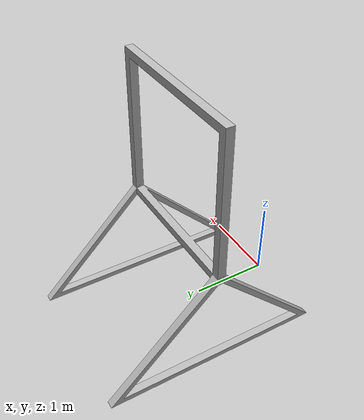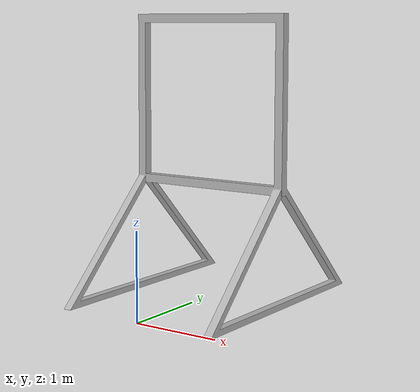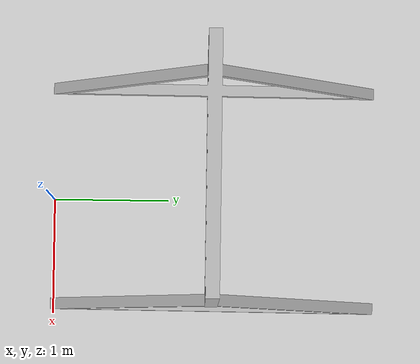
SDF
<?xml version="1.0" ?>
<sdf version="1.5">
  <model name="Drone gate">
    <static>true</static>
    <link name="link">
      <collision name="collision">
        <geometry>
          <mesh>
            <uri>model://drone_gate/meshes/gate.dae</uri>
            <scale>1 1 1</scale>
          </mesh>
        </geometry>
      </collision>
      <visual name="visual">
        <geometry>
          <mesh>
            <uri>model://drone_gate/meshes/gate.dae</uri>
            <scale>1 1 1</scale>
          </mesh>
        </geometry>
      </visual>
    </link>
  </model>
</sdf>
